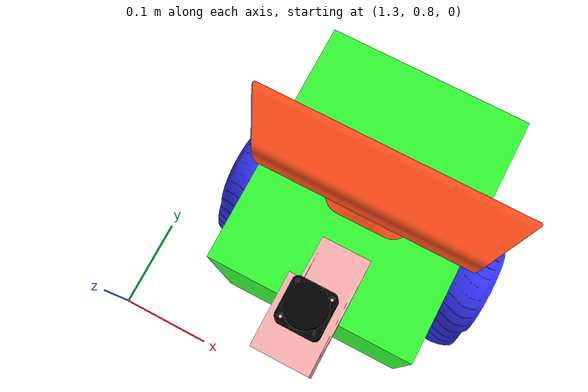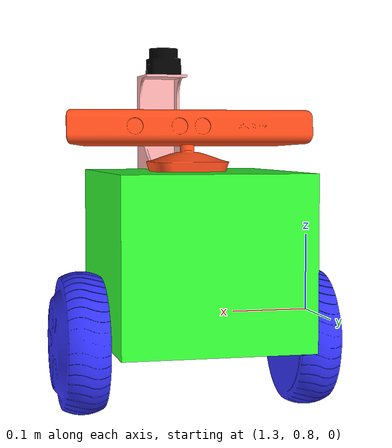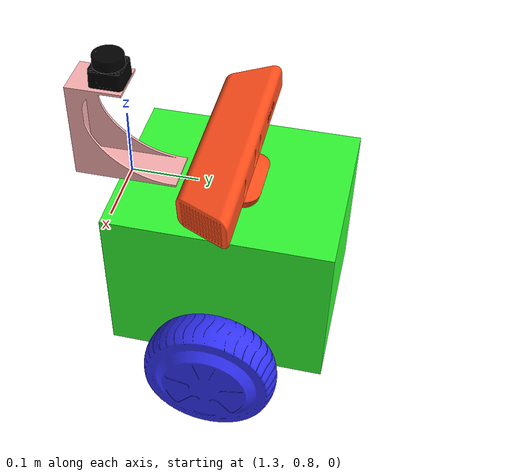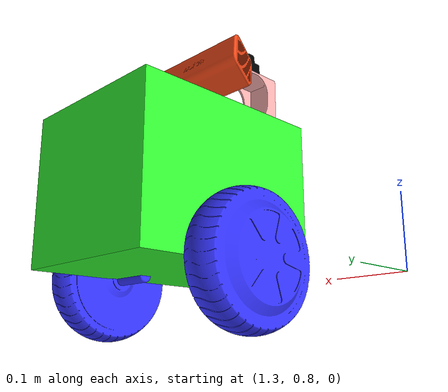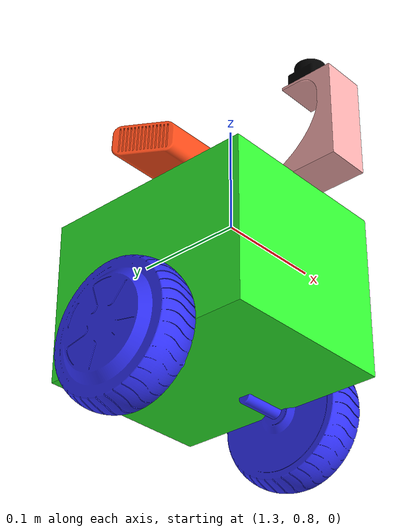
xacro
<?xml version="1.0"?>
<robot xmlns:xacro="http://www.ros.org/wiki/xacro" name="travel_bot">
    <!--to include other files-->
    <!--xacro:include filename="my_materials.xacro"/-->

    <link name="world_link"/>

    <joint name="base_joint" type="fixed">
        <parent link="world_link"/>
        <child link="base_link"/>
        <origin xyz="1.5 1.0 0.0" rpy="0.0 0.0 0.0"/>
    </joint>

    <link name="base_link">
        <visual>
            <origin xyz="0.0 0.0 0.095" rpy="0.0 0.0 0.0"/>
            <geometry>
                <box size="0.21 0.255 0.19"/>
            </geometry>
            <material name="green">
                <color rgba="0.2 1 0.2 1"/>
            </material>
        </visual>
        <collision>
            <origin xyz="0.0 0.0 0.095" rpy="0.0 0.0 0.0"/>
            <geometry>
                <box size="0.21 0.255 0.19"/>
            </geometry>
        </collision>
        <inertial>
            <origin xyz="0.0 0.0 0.095" rpy="0.0 0.0 0.0"/>
            <mass value="1.5"/>
            <inertia ixx="0.0" ixy="0.0" ixz="0.0" iyy="0.0" iyz="0.0" izz="0.0"/>  <!--still have to work these out online, box of 1.5kg + dimentions-->
        </inertial>

        <gazebo reference="base_link">
          <material>Gazebo/Blue</material>
        </gazebo>

    </link>

    <link name="right_wheel_link">
        <visual>
            <origin xyz="0.1 0.0 0.0" rpy="0.0 0.0 0.0"/>
            <geometry>
            <!--when using path to mesh file it must be in package and path should start with package://-->
                <mesh filename="package://travel_bot_description/meshes/Hoverboard_Wheel_6_in.stl" scale="0.001 0.001 0.001"/>
            <!--using auto fill mesh block> it gives only variable in scale but three reqiured x,y,x -->
            </geometry>
            <material name="blue">
                <color rgba="0.2 0.2 1 1"/>
            </material>
        </visual>

        <inertial>
            <origin xyz="0.3 0.0 0.0" rpy="0.0 0.0 0.0"/>
            <mass value="2.0"/>
            <inertia ixx="0.0" ixy="0.0" ixz="0.0" iyy="0.0" iyz="0.0" izz="0.0"/>  <!--still have to work these out online, cylinder of 2kg + dimentions-->
        </inertial>

        <gazebo reference="right_wheel_link">
          <material>Gazebo/Blue</material>
        </gazebo>

    </link>

        <link name="left_wheel_link">
        <visual>
            <origin xyz="-0.1 0.0 0.0" rpy="0.0 3.14159 0.0"/>
            <geometry>
            <!--filename says path to file but filename works as long as in meshes folder under package folder-->
                <!--mesh filename="Hoverboard_Wheel_6_in.stl" scale="0.001 0.001 0.001"/--><!--no it doesn,t-->
                <mesh filename="package://travel_bot_description/meshes/Hoverboard_Wheel_6_in.stl" scale="0.001 0.001 0.001"/>
            </geometry>
            <material name="blue">
                <color rgba="0.2 0.2 1 1"/>
            </material>
        </visual>

        <inertial>
            <origin xyz="0.5 0.0 0.0" rpy="0.0 0.0 0.0"/>
            <mass value="2.0"/>
            <inertia ixx="0.0" ixy="0.0" ixz="0.0" iyy="0.0" iyz="0.0" izz="0.0"/>  <!--still have to work these out online, cylinder of 2kg + dimentions-->
        </inertial>

        <gazebo reference="left_wheel_link">
          <material>Gazebo/Blue</material>
        </gazebo>

    </link>

    <link name="depthCam_link">
        <visual>
            <origin xyz="1.49 1.0 0.2" rpy="0.0 0.0 0.0"/>
            <geometry>
            <!--filename says path to file but filename works as long as in meshes folder under package folder-->
                <!--mesh filename="Hoverboard_Wheel_6_in.stl" scale="0.001 0.001 0.001"/--><!--no it doesn,t-->
                <mesh filename="package://travel_bot_description/meshes/Kinect.stl" scale="0.001 0.001 0.001"/>
            </geometry>
            <material name="orange">
                <color rgba="1 0.3 0.1 1"/>
            </material>
        </visual>

        <inertial>
            <origin xyz="0.5 0.0 0.0" rpy="0.0 0.0 0.0"/>
            <mass value="2.0"/>
            <inertia ixx="0.0" ixy="0.0" ixz="0.0" iyy="0.0" iyz="0.0" izz="0.0"/>  <!--still have to work these out online, cylinder of 2kg + dimentions-->
        </inertial>

        <gazebo reference="depthCam_link">
          <material>Gazebo/Blue</material>
        </gazebo>

    </link>

    <link name="lidar_link">
        <visual>
            <origin xyz="0.0 0.0 0.0" rpy="1.5708 0.0 0.0"/>
            <geometry>
            <!--filename says path to file but filename works as long as in meshes folder under package folder-->
                <!--mesh filename="Hoverboard_Wheel_6_in.stl" scale="0.001 0.001 0.001"/--><!--no it doesn,t-->
                <mesh filename="package://travel_bot_description/meshes/LD06_LiDAR.stl" scale="0.001 0.001 0.001"/>
            </geometry>
            <material name="black">
                <color rgba="0 0 0 1"/>
            </material>
        </visual>

        <inertial>
            <origin xyz="0.5 0.0 0.0" rpy="0.0 0.0 0.0"/>
            <mass value="2.0"/>
            <inertia ixx="0.0" ixy="0.0" ixz="0.0" iyy="0.0" iyz="0.0" izz="0.0"/>  <!--still have to work these out online, cylinder of 2kg + dimentions-->
        </inertial>

        <gazebo reference="lidar_link">
          <material>Gazebo/Blue</material>
        </gazebo>

    </link>

    <link name="lidarBracket_link">
        <visual>
            <origin xyz="0.0 0.0 0.0" rpy="0.0 0.0 0.0"/>

            <geometry>
            <!--filename says path to file but filename works as long as in meshes folder under package folder-->
                <!--mesh filename="Hoverboard_Wheel_6_in.stl" scale="0.001 0.001 0.001"/--><!--no it doesn,t-->
                <mesh filename="package://travel_bot_description/meshes/lidarMount.stl" scale="0.001 0.001 0.001"/>
            </geometry>
            <material name="pink">
                <color rgba="1 0.7 0.7 1"/>
            </material>
        </visual>

        <inertial>
            <origin xyz="0.5 0.0 0.0" rpy="0.0 0.0 0.0"/>
            <mass value="2.0"/>
            <inertia ixx="0.0" ixy="0.0" ixz="0.0" iyy="0.0" iyz="0.0" izz="0.0"/>  <!--still have to work these out online, cylinder of 2kg + dimentions-->
        </inertial>

        <gazebo reference="lidarBracket_link">
          <material>Gazebo/Blue</material>
        </gazebo>

    </link>

    <joint name="depthCam_joint" type="fixed">
        <parent link="base_link"/>
        <child link="depthCam_link"/>
        <origin xyz="1.49 1.0 0.0" rpy="0.0 0.0 3.14159"/>
    </joint>

    <joint name="lidarBracket_joint" type="fixed">
        <parent link="base_link"/>
        <child link="lidarBracket_link"/>
        <origin xyz="0.006 -0.18 0.247" rpy="0.0 0.0 0.0"/>
    </joint>

    <joint name="lidar_joint" type="fixed">
        <parent link="lidarBracket_link"/>
        <child link="lidar_link"/>
        <origin xyz="-0.016 0.072 0.053" rpy="0.0 0.0 0.0"/>
    </joint>

    <joint name="right_wheel_joint" type="continuous">
        <parent link="base_link"/>
        <child link="right_wheel_link"/>
        <axis xyz="0 0 0"/>
        <origin xyz="0 0 0" rpy="0 0 0"/>
    </joint>

    <joint name="left_wheel_joint" type="continuous">
        <parent link="base_link"/>
        <child link="left_wheel_link"/>
        <axis xyz="0 0 0"/>
        <origin xyz="0 0 0" rpy="0 0 0"/>
    </joint>

</robot>
